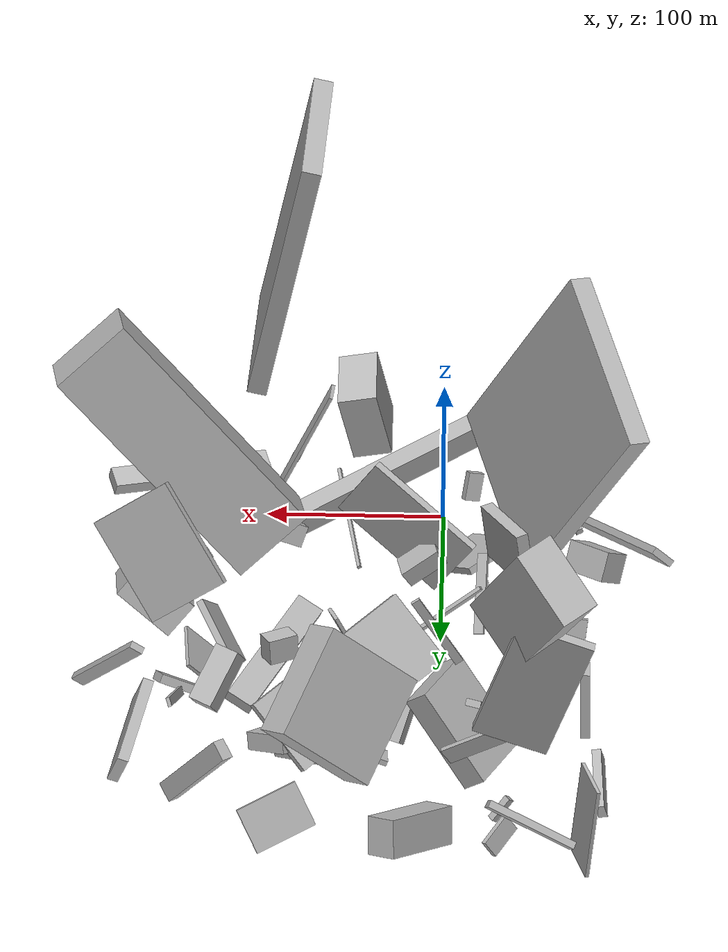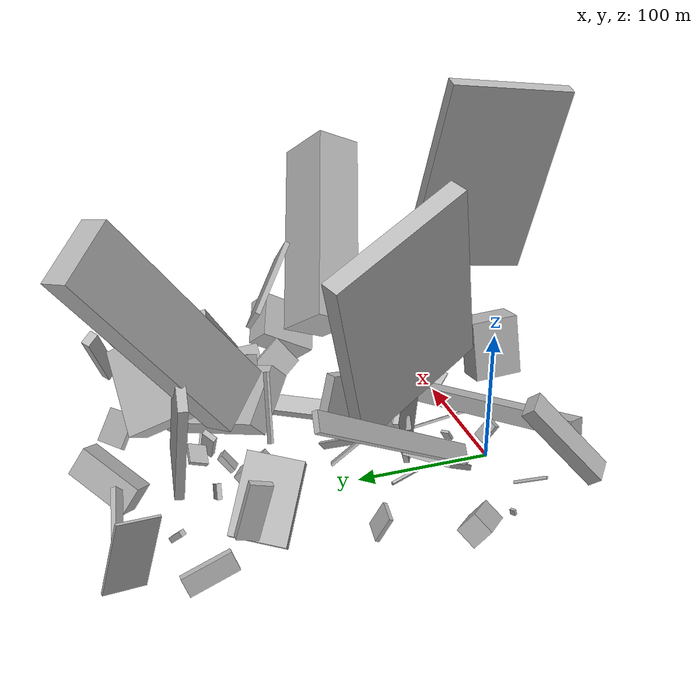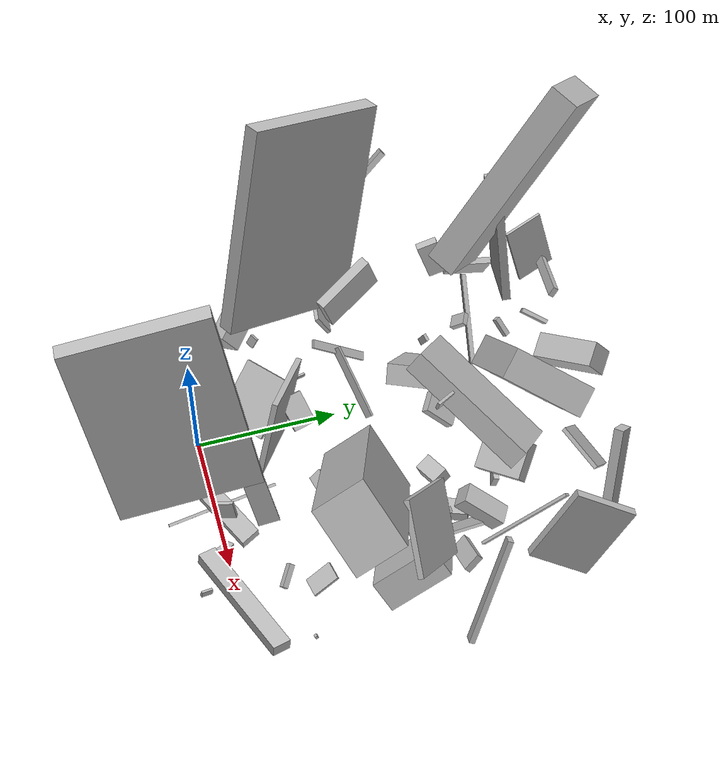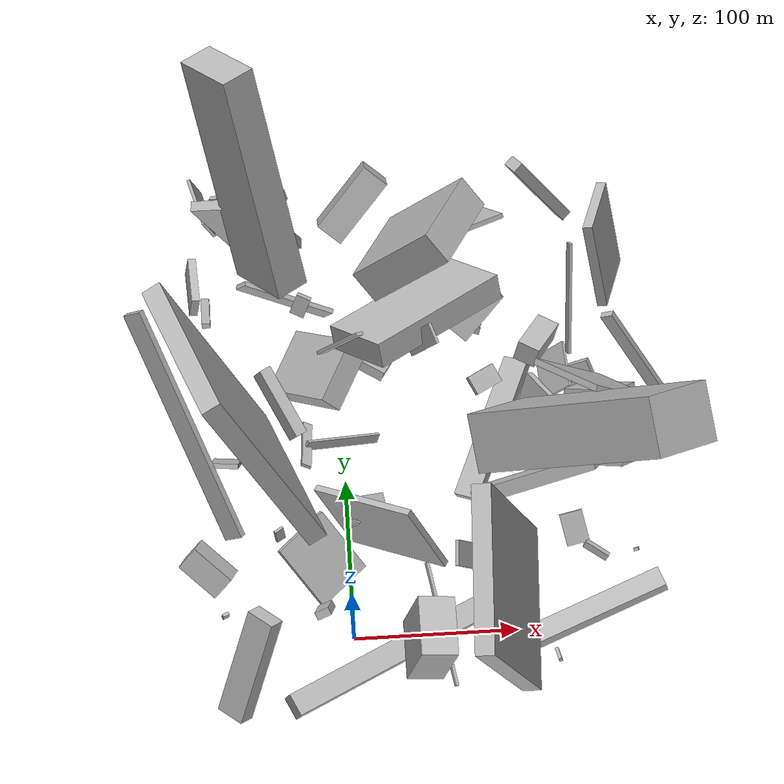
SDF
<sdf version="1.6">
 <world name="default">
  <model name="building_5">
   <static>0</static>
   <pose>44.778056149244705 -2.744506497203627 66.14277066838804 1.3153854542540708 -1.363695703409228 0.254666859420948</pose>
   <link name="link">
    <gravity>0</gravity>
    <pose>0 0 18.0 0 0 0</pose>
    <collision name="collision"><geometry><box><size>45 22 36</size></box></geometry></collision>
    <visual name="visual">
     <cast_shadows>0</cast_shadows>
     <geometry><box><size>45 22 36</size></box></geometry>
     <material>
      <script>
       <uri>model://HANNAS_wall/materials/scripts</uri>
       <uri>model://HANNAS_wall/materials/textures</uri>
       <name>vrc/HANNAS_wall</name>
      </script>
     </material>
    </visual>
   </link>
  </model>
  <model name="building_10">
   <static>0</static>
   <pose>159.26238290925542 92.02896353972424 36.88318740638226 -0.866168906942549 0.688343639659553 0.5821362179712117</pose>
   <link name="link">
    <gravity>0</gravity>
    <pose>0 0 23.5 0 0 0</pose>
    <collision name="collision"><geometry><box><size>22 37 47</size></box></geometry></collision>
    <visual name="visual">
     <cast_shadows>0</cast_shadows>
     <geometry><box><size>22 37 47</size></box></geometry>
     <material>
      <script>
       <uri>model://HANNAS_wall/materials/scripts</uri>
       <uri>model://HANNAS_wall/materials/textures</uri>
       <name>vrc/HANNAS_wall</name>
      </script>
     </material>
    </visual>
   </link>
  </model>
  <model name="building_17">
   <static>0</static>
   <pose>147.07335124607422 31.586698252664128 56.90004389693871 0.39409373939661796 -0.781526906151696 0.7269519840878601</pose>
   <link name="link">
    <gravity>0</gravity>
    <pose>0 0 2.0 0 0 0</pose>
    <collision name="collision"><geometry><box><size>4 16 4</size></box></geometry></collision>
    <visual name="visual">
     <cast_shadows>0</cast_shadows>
     <geometry><box><size>4 16 4</size></box></geometry>
     <material>
      <script>
       <uri>model://HANNAS_wall/materials/scripts</uri>
       <uri>model://HANNAS_wall/materials/textures</uri>
       <name>vrc/HANNAS_wall</name>
      </script>
     </material>
    </visual>
   </link>
  </model>
  <model name="building_19">
   <static>0</static>
   <pose>-36.991929567998454 195.44361527709134 106.40523324313753 0.6014749438251477 -0.23630089838122537 -2.5452063587975697</pose>
   <link name="link">
    <gravity>0</gravity>
    <pose>0 0 75.0 0 0 0</pose>
    <collision name="collision"><geometry><box><size>21 43 150</size></box></geometry></collision>
    <visual name="visual">
     <cast_shadows>0</cast_shadows>
     <geometry><box><size>21 43 150</size></box></geometry>
     <material>
      <script>
       <uri>model://HANNAS_wall/materials/scripts</uri>
       <uri>model://HANNAS_wall/materials/textures</uri>
       <name>vrc/HANNAS_wall</name>
      </script>
     </material>
    </visual>
   </link>
  </model>
  <model name="building_20">
   <static>0</static>
   <pose>94.09822200327073 98.38151085722018 77.85997008511394 0.6651164806860675 -0.4116509122025526 1.7270880041664904</pose>
   <link name="link">
    <gravity>0</gravity>
    <pose>0 0 75.0 0 0 0</pose>
    <collision name="collision"><geometry><box><size>36 48 150</size></box></geometry></collision>
    <visual name="visual">
     <cast_shadows>0</cast_shadows>
     <geometry><box><size>36 48 150</size></box></geometry>
     <material>
      <script>
       <uri>model://HANNAS_wall/materials/scripts</uri>
       <uri>model://HANNAS_wall/materials/textures</uri>
       <name>vrc/HANNAS_wall</name>
      </script>
     </material>
    </visual>
   </link>
  </model>
  <model name="building_24">
   <static>0</static>
   <pose>-15.30325132641914 13.638468927713093 27.282446304270735 -0.3785649534801156 -0.45344692399374487 2.0214560540023783</pose>
   <link name="link">
    <gravity>0</gravity>
    <pose>0 0 8.0 0 0 0</pose>
    <collision name="collision"><geometry><box><size>5 9 16</size></box></geometry></collision>
    <visual name="visual">
     <cast_shadows>0</cast_shadows>
     <geometry><box><size>5 9 16</size></box></geometry>
     <material>
      <script>
       <uri>model://HANNAS_wall/materials/scripts</uri>
       <uri>model://HANNAS_wall/materials/textures</uri>
       <name>vrc/HANNAS_wall</name>
      </script>
     </material>
    </visual>
   </link>
  </model>
  <model name="building_29">
   <static>0</static>
   <pose>39.81136026822822 195.73140224076906 21.76191490640496 0.772020333046498 -0.8735557124724231 3.059999052609426</pose>
   <link name="link">
    <gravity>0</gravity>
    <pose>0 0 5.0 0 0 0</pose>
    <collision name="collision"><geometry><box><size>38 4 10</size></box></geometry></collision>
    <visual name="visual">
     <cast_shadows>0</cast_shadows>
     <geometry><box><size>38 4 10</size></box></geometry>
     <material>
      <script>
       <uri>model://HANNAS_wall/materials/scripts</uri>
       <uri>model://HANNAS_wall/materials/textures</uri>
       <name>vrc/HANNAS_wall</name>
      </script>
     </material>
    </visual>
   </link>
  </model>
  <model name="building_34">
   <static>0</static>
   <pose>-30.20484504628663 34.5323856704043 17.383747631731975 1.6149548478544853 -0.5825663751012802 2.284457913500342</pose>
   <link name="link">
    <gravity>0</gravity>
    <pose>0 0 18.0 0 0 0</pose>
    <collision name="collision"><geometry><box><size>45 4 36</size></box></geometry></collision>
    <visual name="visual">
     <cast_shadows>0</cast_shadows>
     <geometry><box><size>45 4 36</size></box></geometry>
     <material>
      <script>
       <uri>model://HANNAS_wall/materials/scripts</uri>
       <uri>model://HANNAS_wall/materials/textures</uri>
       <name>vrc/HANNAS_wall</name>
      </script>
     </material>
    </visual>
   </link>
  </model>
  <model name="building_38">
   <static>0</static>
   <pose>65.04835317907795 250.75795322189708 61.40890547400553 0.9521231421667657 0.5278951409897339 -0.824453036692885</pose>
   <link name="link">
    <gravity>0</gravity>
    <pose>0 0 31.5 0 0 0</pose>
    <collision name="collision"><geometry><box><size>22 63 63</size></box></geometry></collision>
    <visual name="visual">
     <cast_shadows>0</cast_shadows>
     <geometry><box><size>22 63 63</size></box></geometry>
     <material>
      <script>
       <uri>model://HANNAS_wall/materials/scripts</uri>
       <uri>model://HANNAS_wall/materials/textures</uri>
       <name>vrc/HANNAS_wall</name>
      </script>
     </material>
    </visual>
   </link>
  </model>
  <model name="building_41">
   <static>0</static>
   <pose>-33.74149543195303 234.93582793715007 9.813323096186096 1.5978974556556989 0.7907058344630101 -2.526757367083551</pose>
   <link name="link">
    <gravity>0</gravity>
    <pose>0 0 2.0 0 0 0</pose>
    <collision name="collision"><geometry><box><size>4 15 4</size></box></geometry></collision>
    <visual name="visual">
     <cast_shadows>0</cast_shadows>
     <geometry><box><size>4 15 4</size></box></geometry>
     <material>
      <script>
       <uri>model://HANNAS_wall/materials/scripts</uri>
       <uri>model://HANNAS_wall/materials/textures</uri>
       <name>vrc/HANNAS_wall</name>
      </script>
     </material>
    </visual>
   </link>
  </model>
  <model name="building_42">
   <static>0</static>
   <pose>47.56785787581535 193.55038631564204 61.08692737566241 2.7045848603733917 -0.6232896597212882 -0.6908006851312648</pose>
   <link name="link">
    <gravity>0</gravity>
    <pose>0 0 8.0 0 0 0</pose>
    <collision name="collision"><geometry><box><size>45 98 16</size></box></geometry></collision>
    <visual name="visual">
     <cast_shadows>0</cast_shadows>
     <geometry><box><size>45 98 16</size></box></geometry>
     <material>
      <script>
       <uri>model://HANNAS_wall/materials/scripts</uri>
       <uri>model://HANNAS_wall/materials/textures</uri>
       <name>vrc/HANNAS_wall</name>
      </script>
     </material>
    </visual>
   </link>
  </model>
  <model name="building_46">
   <static>0</static>
   <pose>-34.01270636420579 74.30110749328891 89.77980059421813 0.3928609142874488 0.23525536511066883 -2.690229514602487</pose>
   <link name="link">
    <gravity>0</gravity>
    <pose>0 0 75.0 0 0 0</pose>
    <collision name="collision"><geometry><box><size>12 101 150</size></box></geometry></collision>
    <visual name="visual">
     <cast_shadows>0</cast_shadows>
     <geometry><box><size>12 101 150</size></box></geometry>
     <material>
      <script>
       <uri>model://HANNAS_wall/materials/scripts</uri>
       <uri>model://HANNAS_wall/materials/textures</uri>
       <name>vrc/HANNAS_wall</name>
      </script>
     </material>
    </visual>
   </link>
  </model>
  <model name="building_50">
   <static>0</static>
   <pose>21.586786002957346 -9.913893449675665 24.553142592630902 -2.2737813572307797 1.3163746159163776 2.9154272464365754</pose>
   <link name="link">
    <gravity>0</gravity>
    <pose>0 0 7.0 0 0 0</pose>
    <collision name="collision"><geometry><box><size>13 146 14</size></box></geometry></collision>
    <visual name="visual">
     <cast_shadows>0</cast_shadows>
     <geometry><box><size>13 146 14</size></box></geometry>
     <material>
      <script>
       <uri>model://HANNAS_wall/materials/scripts</uri>
       <uri>model://HANNAS_wall/materials/textures</uri>
       <name>vrc/HANNAS_wall</name>
      </script>
     </material>
    </visual>
   </link>
  </model>
  <model name="building_53">
   <static>0</static>
   <pose>100.60390814860959 -15.092230734774791 25.896820279495763 -1.4259927205225118 -0.19645979109741132 -1.2516202834565033</pose>
   <link name="link">
    <gravity>0</gravity>
    <pose>0 0 46.0 0 0 0</pose>
    <collision name="collision"><geometry><box><size>13 8 92</size></box></geometry></collision>
    <visual name="visual">
     <cast_shadows>0</cast_shadows>
     <geometry><box><size>13 8 92</size></box></geometry>
     <material>
      <script>
       <uri>model://HANNAS_wall/materials/scripts</uri>
       <uri>model://HANNAS_wall/materials/textures</uri>
       <name>vrc/HANNAS_wall</name>
      </script>
     </material>
    </visual>
   </link>
  </model>
  <model name="building_55">
   <static>0</static>
   <pose>20.288248704480694 267.6215410302659 26.28270576237411 -1.1436431044468642 -0.4209165771703944 0.7734837032444581</pose>
   <link name="link">
    <gravity>0</gravity>
    <pose>0 0 9.0 0 0 0</pose>
    <collision name="collision"><geometry><box><size>47 21 18</size></box></geometry></collision>
    <visual name="visual">
     <cast_shadows>0</cast_shadows>
     <geometry><box><size>47 21 18</size></box></geometry>
     <material>
      <script>
       <uri>model://HANNAS_wall/materials/scripts</uri>
       <uri>model://HANNAS_wall/materials/textures</uri>
       <name>vrc/HANNAS_wall</name>
      </script>
     </material>
    </visual>
   </link>
  </model>
  <model name="building_57">
   <static>0</static>
   <pose>3.0971568858658696 158.83400276451692 29.963167547131142 -2.9717191477229377 0.7430932668340345 -0.3727582983278649</pose>
   <link name="link">
    <gravity>0</gravity>
    <pose>0 0 29.5 0 0 0</pose>
    <collision name="collision"><geometry><box><size>15 41 59</size></box></geometry></collision>
    <visual name="visual">
     <cast_shadows>0</cast_shadows>
     <geometry><box><size>15 41 59</size></box></geometry>
     <material>
      <script>
       <uri>model://HANNAS_wall/materials/scripts</uri>
       <uri>model://HANNAS_wall/materials/textures</uri>
       <name>vrc/HANNAS_wall</name>
      </script>
     </material>
    </visual>
   </link>
  </model>
  <model name="building_70">
   <static>0</static>
   <pose>88.65905766396622 192.63918042807668 8.003514401234632 1.5367970615400475 -0.1730445294510119 -1.8297818944161446</pose>
   <link name="link">
    <gravity>0</gravity>
    <pose>0 0 22.0 0 0 0</pose>
    <collision name="collision"><geometry><box><size>4 10 44</size></box></geometry></collision>
    <visual name="visual">
     <cast_shadows>0</cast_shadows>
     <geometry><box><size>4 10 44</size></box></geometry>
     <material>
      <script>
       <uri>model://HANNAS_wall/materials/scripts</uri>
       <uri>model://HANNAS_wall/materials/textures</uri>
       <name>vrc/HANNAS_wall</name>
      </script>
     </material>
    </visual>
   </link>
  </model>
  <model name="building_75">
   <static>0</static>
   <pose>109.69385635925492 166.89216809473487 16.685920964842254 1.6617572279418997 -0.3577526816601804 -0.4363376201095537</pose>
   <link name="link">
    <gravity>0</gravity>
    <pose>0 0 46.0 0 0 0</pose>
    <collision name="collision"><geometry><box><size>16 6 92</size></box></geometry></collision>
    <visual name="visual">
     <cast_shadows>0</cast_shadows>
     <geometry><box><size>16 6 92</size></box></geometry>
     <material>
      <script>
       <uri>model://HANNAS_wall/materials/scripts</uri>
       <uri>model://HANNAS_wall/materials/textures</uri>
       <name>vrc/HANNAS_wall</name>
      </script>
     </material>
    </visual>
   </link>
  </model>
  <model name="building_77">
   <static>0</static>
   <pose>181.8570690344355 160.13765905627568 35.90201999981313 1.1737415076461686 -0.5812599467703655 -0.11875032636745551</pose>
   <link name="link">
    <gravity>0</gravity>
    <pose>0 0 2.0 0 0 0</pose>
    <collision name="collision"><geometry><box><size>8 78 4</size></box></geometry></collision>
    <visual name="visual">
     <cast_shadows>0</cast_shadows>
     <geometry><box><size>8 78 4</size></box></geometry>
     <material>
      <script>
       <uri>model://HANNAS_wall/materials/scripts</uri>
       <uri>model://HANNAS_wall/materials/textures</uri>
       <name>vrc/HANNAS_wall</name>
      </script>
     </material>
    </visual>
   </link>
  </model>
  <model name="building_78">
   <static>0</static>
   <pose>-69.05500821972882 -20.016692343197818 45.925746586712165 1.2667740156166245 0.7178146535718989 0.6640760450265506</pose>
   <link name="link">
    <gravity>0</gravity>
    <pose>0 0 9.0 0 0 0</pose>
    <collision name="collision"><geometry><box><size>11 71 18</size></box></geometry></collision>
    <visual name="visual">
     <cast_shadows>0</cast_shadows>
     <geometry><box><size>11 71 18</size></box></geometry>
     <material>
      <script>
       <uri>model://HANNAS_wall/materials/scripts</uri>
       <uri>model://HANNAS_wall/materials/textures</uri>
       <name>vrc/HANNAS_wall</name>
      </script>
     </material>
    </visual>
   </link>
  </model>
  <model name="building_84">
   <static>0</static>
   <pose>142.8050403978477 254.7878102235095 37.96091175630559 -0.2959593701829025 0.5469052099843638 2.1654133992850406</pose>
   <link name="link">
    <gravity>0</gravity>
    <pose>0 0 29.0 0 0 0</pose>
    <collision name="collision"><geometry><box><size>11 7 58</size></box></geometry></collision>
    <visual name="visual">
     <cast_shadows>0</cast_shadows>
     <geometry><box><size>11 7 58</size></box></geometry>
     <material>
      <script>
       <uri>model://HANNAS_wall/materials/scripts</uri>
       <uri>model://HANNAS_wall/materials/textures</uri>
       <name>vrc/HANNAS_wall</name>
      </script>
     </material>
    </visual>
   </link>
  </model>
  <model name="building_85">
   <static>0</static>
   <pose>-67.43605131735086 51.27881789525554 55.22328149071778 -0.8900346789164839 0.5775695782136471 0.8311956906063748</pose>
   <link name="link">
    <gravity>0</gravity>
    <pose>0 0 75.0 0 0 0</pose>
    <collision name="collision"><geometry><box><size>4 13 150</size></box></geometry></collision>
    <visual name="visual">
     <cast_shadows>0</cast_shadows>
     <geometry><box><size>4 13 150</size></box></geometry>
     <material>
      <script>
       <uri>model://HANNAS_wall/materials/scripts</uri>
       <uri>model://HANNAS_wall/materials/textures</uri>
       <name>vrc/HANNAS_wall</name>
      </script>
     </material>
    </visual>
   </link>
  </model>
  <model name="building_86">
   <static>0</static>
   <pose>-79.89344231442692 200.83990857174874 33.729544997269294 0.2783712758644961 0.028830114520375132 -0.004179800393548991</pose>
   <link name="link">
    <gravity>0</gravity>
    <pose>0 0 19.5 0 0 0</pose>
    <collision name="collision"><geometry><box><size>5 15 39</size></box></geometry></collision>
    <visual name="visual">
     <cast_shadows>0</cast_shadows>
     <geometry><box><size>5 15 39</size></box></geometry>
     <material>
      <script>
       <uri>model://HANNAS_wall/materials/scripts</uri>
       <uri>model://HANNAS_wall/materials/textures</uri>
       <name>vrc/HANNAS_wall</name>
      </script>
     </material>
    </visual>
   </link>
  </model>
  <model name="building_87">
   <static>0</static>
   <pose>102.16376389358152 -19.573573346609606 112.08620609434865 0.20204767647860034 0.12589782431157232 -1.6097579346735635</pose>
   <link name="link">
    <gravity>0</gravity>
    <pose>0 0 75.0 0 0 0</pose>
    <collision name="collision"><geometry><box><size>94 11 150</size></box></geometry></collision>
    <visual name="visual">
     <cast_shadows>0</cast_shadows>
     <geometry><box><size>94 11 150</size></box></geometry>
     <material>
      <script>
       <uri>model://HANNAS_wall/materials/scripts</uri>
       <uri>model://HANNAS_wall/materials/textures</uri>
       <name>vrc/HANNAS_wall</name>
      </script>
     </material>
    </visual>
   </link>
  </model>
  <model name="building_93">
   <static>0</static>
   <pose>47.04210110501532 41.31547956295458 63.7975307350153 2.078477752223365 -0.09132652222053321 -2.1198149634703136</pose>
   <link name="link">
    <gravity>0</gravity>
    <pose>0 0 35.5 0 0 0</pose>
    <collision name="collision"><geometry><box><size>4 57 71</size></box></geometry></collision>
    <visual name="visual">
     <cast_shadows>0</cast_shadows>
     <geometry><box><size>4 57 71</size></box></geometry>
     <material>
      <script>
       <uri>model://HANNAS_wall/materials/scripts</uri>
       <uri>model://HANNAS_wall/materials/textures</uri>
       <name>vrc/HANNAS_wall</name>
      </script>
     </material>
    </visual>
   </link>
  </model>
  <model name="building_94">
   <static>0</static>
   <pose>172.85004721239002 123.91050046894952 73.08390082262079 0.8129132900208634 0.41974611180112015 -1.965882683772748</pose>
   <link name="link">
    <gravity>0</gravity>
    <pose>0 0 25.5 0 0 0</pose>
    <collision name="collision"><geometry><box><size>4 63 51</size></box></geometry></collision>
    <visual name="visual">
     <cast_shadows>0</cast_shadows>
     <geometry><box><size>4 63 51</size></box></geometry>
     <material>
      <script>
       <uri>model://HANNAS_wall/materials/scripts</uri>
       <uri>model://HANNAS_wall/materials/textures</uri>
       <name>vrc/HANNAS_wall</name>
      </script>
     </material>
    </visual>
   </link>
  </model>
  <model name="building_98">
   <static>0</static>
   <pose>68.57291536554484 189.85977787512414 21.272554055263484 -0.9201270914004317 -0.991508661698726 -1.3734487569067695</pose>
   <link name="link">
    <gravity>0</gravity>
    <pose>0 0 18.0 0 0 0</pose>
    <collision name="collision"><geometry><box><size>10 27 36</size></box></geometry></collision>
    <visual name="visual">
     <cast_shadows>0</cast_shadows>
     <geometry><box><size>10 27 36</size></box></geometry>
     <material>
      <script>
       <uri>model://HANNAS_wall/materials/scripts</uri>
       <uri>model://HANNAS_wall/materials/textures</uri>
       <name>vrc/HANNAS_wall</name>
      </script>
     </material>
    </visual>
   </link>
  </model>
  <model name="building_105">
   <static>0</static>
   <pose>121.29701242689217 -16.899383174720217 13.27989947409276 0.6845574657409004 1.2496736858447386 -0.6403095690245395</pose>
   <link name="link">
    <gravity>0</gravity>
    <pose>0 0 4.0 0 0 0</pose>
    <collision name="collision"><geometry><box><size>4 2 8</size></box></geometry></collision>
    <visual name="visual">
     <cast_shadows>0</cast_shadows>
     <geometry><box><size>4 2 8</size></box></geometry>
     <material>
      <script>
       <uri>model://HANNAS_wall/materials/scripts</uri>
       <uri>model://HANNAS_wall/materials/textures</uri>
       <name>vrc/HANNAS_wall</name>
      </script>
     </material>
    </visual>
   </link>
  </model>
  <model name="building_106">
   <static>0</static>
   <pose>-22.653697577567367 108.85219418257869 46.468556305545725 -0.42116489595931716 -0.6556310355510672 -1.6150396552650936</pose>
   <link name="link">
    <gravity>0</gravity>
    <pose>0 0 1.0 0 0 0</pose>
    <collision name="collision"><geometry><box><size>45 6 2</size></box></geometry></collision>
    <visual name="visual">
     <cast_shadows>0</cast_shadows>
     <geometry><box><size>45 6 2</size></box></geometry>
     <material>
      <script>
       <uri>model://HANNAS_wall/materials/scripts</uri>
       <uri>model://HANNAS_wall/materials/textures</uri>
       <name>vrc/HANNAS_wall</name>
      </script>
     </material>
    </visual>
   </link>
  </model>
  <model name="building_110">
   <static>0</static>
   <pose>-80.55149635185131 111.03139016333178 17.670570271075857 1.4947455478342635 -0.4791080192908063 1.4872667559937331</pose>
   <link name="link">
    <gravity>0</gravity>
    <pose>0 0 8.5 0 0 0</pose>
    <collision name="collision"><geometry><box><size>3 19 17</size></box></geometry></collision>
    <visual name="visual">
     <cast_shadows>0</cast_shadows>
     <geometry><box><size>3 19 17</size></box></geometry>
     <material>
      <script>
       <uri>model://HANNAS_wall/materials/scripts</uri>
       <uri>model://HANNAS_wall/materials/textures</uri>
       <name>vrc/HANNAS_wall</name>
      </script>
     </material>
    </visual>
   </link>
  </model>
  <model name="building_117">
   <static>0</static>
   <pose>93.22158286936086 -2.7025622555865985 12.57654559285771 -0.21647198349027924 0.33574865677376137 2.296110096925647</pose>
   <link name="link">
    <gravity>0</gravity>
    <pose>0 0 1.0 0 0 0</pose>
    <collision name="collision"><geometry><box><size>16 7 2</size></box></geometry></collision>
    <visual name="visual">
     <cast_shadows>0</cast_shadows>
     <geometry><box><size>16 7 2</size></box></geometry>
     <material>
      <script>
       <uri>model://HANNAS_wall/materials/scripts</uri>
       <uri>model://HANNAS_wall/materials/textures</uri>
       <name>vrc/HANNAS_wall</name>
      </script>
     </material>
    </visual>
   </link>
  </model>
  <model name="building_123">
   <static>0</static>
   <pose>9.55028257614181 78.49554610552082 35.18464714955 -1.8841405367309316 0.9879080445254985 3.073421940668859</pose>
   <link name="link">
    <gravity>0</gravity>
    <pose>0 0 8.0 0 0 0</pose>
    <collision name="collision"><geometry><box><size>10 24 16</size></box></geometry></collision>
    <visual name="visual">
     <cast_shadows>0</cast_shadows>
     <geometry><box><size>10 24 16</size></box></geometry>
     <material>
      <script>
       <uri>model://HANNAS_wall/materials/scripts</uri>
       <uri>model://HANNAS_wall/materials/textures</uri>
       <name>vrc/HANNAS_wall</name>
      </script>
     </material>
    </visual>
   </link>
  </model>
  <model name="building_129">
   <static>0</static>
   <pose>114.98173976175015 76.88918434285632 64.86548947756653 0.549041569554874 -0.47288677825816045 0.09905354553479863</pose>
   <link name="link">
    <gravity>0</gravity>
    <pose>0 0 6.0 0 0 0</pose>
    <collision name="collision"><geometry><box><size>80 9 12</size></box></geometry></collision>
    <visual name="visual">
     <cast_shadows>0</cast_shadows>
     <geometry><box><size>80 9 12</size></box></geometry>
     <material>
      <script>
       <uri>model://HANNAS_wall/materials/scripts</uri>
       <uri>model://HANNAS_wall/materials/textures</uri>
       <name>vrc/HANNAS_wall</name>
      </script>
     </material>
    </visual>
   </link>
  </model>
  <model name="building_130">
   <static>0</static>
   <pose>-75.53043152176097 256.83071332406735 35.1263498574639 0.6570457908297681 -1.3258581061257526 -1.95541505049849</pose>
   <link name="link">
    <gravity>0</gravity>
    <pose>0 0 14.5 0 0 0</pose>
    <collision name="collision"><geometry><box><size>54 2 29</size></box></geometry></collision>
    <visual name="visual">
     <cast_shadows>0</cast_shadows>
     <geometry><box><size>54 2 29</size></box></geometry>
     <material>
      <script>
       <uri>model://HANNAS_wall/materials/scripts</uri>
       <uri>model://HANNAS_wall/materials/textures</uri>
       <name>vrc/HANNAS_wall</name>
      </script>
     </material>
    </visual>
   </link>
  </model>
  <model name="building_132">
   <static>0</static>
   <pose>-28.72107491710064 268.9070764479894 11.84519118849273 1.2380202692970201 0.47434956323731287 -0.7838491232640163</pose>
   <link name="link">
    <gravity>0</gravity>
    <pose>0 0 10.0 0 0 0</pose>
    <collision name="collision"><geometry><box><size>3 11 20</size></box></geometry></collision>
    <visual name="visual">
     <cast_shadows>0</cast_shadows>
     <geometry><box><size>3 11 20</size></box></geometry>
     <material>
      <script>
       <uri>model://HANNAS_wall/materials/scripts</uri>
       <uri>model://HANNAS_wall/materials/textures</uri>
       <name>vrc/HANNAS_wall</name>
      </script>
     </material>
    </visual>
   </link>
  </model>
  <model name="building_134">
   <static>0</static>
   <pose>-26.476506421375777 73.62945835308172 16.684034185774966 2.8474300179178162 0.12759846053448837 1.8614723078034994</pose>
   <link name="link">
    <gravity>0</gravity>
    <pose>0 0 1.0 0 0 0</pose>
    <collision name="collision"><geometry><box><size>26 2 2</size></box></geometry></collision>
    <visual name="visual">
     <cast_shadows>0</cast_shadows>
     <geometry><box><size>26 2 2</size></box></geometry>
     <material>
      <script>
       <uri>model://HANNAS_wall/materials/scripts</uri>
       <uri>model://HANNAS_wall/materials/textures</uri>
       <name>vrc/HANNAS_wall</name>
      </script>
     </material>
    </visual>
   </link>
  </model>
  <model name="building_140">
   <static>0</static>
   <pose>52.8788719189879 5.380782456340189 2.6659639481458184 0.4878061159554254 0.017148078429171373 1.7393286689024055</pose>
   <link name="link">
    <gravity>0</gravity>
    <pose>0 0 1.0 0 0 0</pose>
    <collision name="collision"><geometry><box><size>80 2 2</size></box></geometry></collision>
    <visual name="visual">
     <cast_shadows>0</cast_shadows>
     <geometry><box><size>80 2 2</size></box></geometry>
     <material>
      <script>
       <uri>model://HANNAS_wall/materials/scripts</uri>
       <uri>model://HANNAS_wall/materials/textures</uri>
       <name>vrc/HANNAS_wall</name>
      </script>
     </material>
    </visual>
   </link>
  </model>
  <model name="building_145">
   <static>0</static>
   <pose>-50.17285317549198 2.882311539325797 10.583080294817655 -0.9335383290484349 -0.5836562993509291 1.843725243613744</pose>
   <link name="link">
    <gravity>0</gravity>
    <pose>0 0 13.5 0 0 0</pose>
    <collision name="collision"><geometry><box><size>2 2 27</size></box></geometry></collision>
    <visual name="visual">
     <cast_shadows>0</cast_shadows>
     <geometry><box><size>2 2 27</size></box></geometry>
     <material>
      <script>
       <uri>model://HANNAS_wall/materials/scripts</uri>
       <uri>model://HANNAS_wall/materials/textures</uri>
       <name>vrc/HANNAS_wall</name>
      </script>
     </material>
    </visual>
   </link>
  </model>
  <model name="building_157">
   <static>0</static>
   <pose>95.70717656823399 30.105300203369843 41.04381327323399 0.42274355815063236 0.21169071356552088 -1.6399710017477136</pose>
   <link name="link">
    <gravity>0</gravity>
    <pose>0 0 39.5 0 0 0</pose>
    <collision name="collision"><geometry><box><size>15 2 79</size></box></geometry></collision>
    <visual name="visual">
     <cast_shadows>0</cast_shadows>
     <geometry><box><size>15 2 79</size></box></geometry>
     <material>
      <script>
       <uri>model://HANNAS_wall/materials/scripts</uri>
       <uri>model://HANNAS_wall/materials/textures</uri>
       <name>vrc/HANNAS_wall</name>
      </script>
     </material>
    </visual>
   </link>
  </model>
  <model name="building_161">
   <static>0</static>
   <pose>87.13650887586039 149.12984221502086 34.694437489073465 -0.08934634535841186 -0.2962137595046673 2.066364255272128</pose>
   <link name="link">
    <gravity>0</gravity>
    <pose>0 0 7.0 0 0 0</pose>
    <collision name="collision"><geometry><box><size>12 17 14</size></box></geometry></collision>
    <visual name="visual">
     <cast_shadows>0</cast_shadows>
     <geometry><box><size>12 17 14</size></box></geometry>
     <material>
      <script>
       <uri>model://HANNAS_wall/materials/scripts</uri>
       <uri>model://HANNAS_wall/materials/textures</uri>
       <name>vrc/HANNAS_wall</name>
      </script>
     </material>
    </visual>
   </link>
  </model>
  <model name="building_162">
   <static>0</static>
   <pose>-41.504166405945625 54.00974428574594 57.42249512885474 2.6451146478871195 0.20059021736939897 0.5971687810962613</pose>
   <link name="link">
    <gravity>0</gravity>
    <pose>0 0 4.0 0 0 0</pose>
    <collision name="collision"><geometry><box><size>6 2 8</size></box></geometry></collision>
    <visual name="visual">
     <cast_shadows>0</cast_shadows>
     <geometry><box><size>6 2 8</size></box></geometry>
     <material>
      <script>
       <uri>model://HANNAS_wall/materials/scripts</uri>
       <uri>model://HANNAS_wall/materials/textures</uri>
       <name>vrc/HANNAS_wall</name>
      </script>
     </material>
    </visual>
   </link>
  </model>
  <model name="building_172">
   <static>0</static>
   <pose>158.535406068865 206.82343414473826 65.30938594620956 2.643470250837866 -0.9753839409646594 1.8397059630993078</pose>
   <link name="link">
    <gravity>0</gravity>
    <pose>0 0 23.0 0 0 0</pose>
    <collision name="collision"><geometry><box><size>60 6 46</size></box></geometry></collision>
    <visual name="visual">
     <cast_shadows>0</cast_shadows>
     <geometry><box><size>60 6 46</size></box></geometry>
     <material>
      <script>
       <uri>model://HANNAS_wall/materials/scripts</uri>
       <uri>model://HANNAS_wall/materials/textures</uri>
       <name>vrc/HANNAS_wall</name>
      </script>
     </material>
    </visual>
   </link>
  </model>
  <model name="building_178">
   <static>0</static>
   <pose>-38.68895730368185 234.1852517309008 61.50014330940941 0.06878475774748455 -0.29687621535792713 -0.12690461648833776</pose>
   <link name="link">
    <gravity>0</gravity>
    <pose>0 0 40.0 0 0 0</pose>
    <collision name="collision"><geometry><box><size>42 6 80</size></box></geometry></collision>
    <visual name="visual">
     <cast_shadows>0</cast_shadows>
     <geometry><box><size>42 6 80</size></box></geometry>
     <material>
      <script>
       <uri>model://HANNAS_wall/materials/scripts</uri>
       <uri>model://HANNAS_wall/materials/textures</uri>
       <name>vrc/HANNAS_wall</name>
      </script>
     </material>
    </visual>
   </link>
  </model>
  <model name="building_179">
   <static>0</static>
   <pose>84.56482207229413 3.3951216693987396 49.56375856413153 2.4517165452093517 -1.1592093908524663 -2.8746149236850917</pose>
   <link name="link">
    <gravity>0</gravity>
    <pose>0 0 1.5 0 0 0</pose>
    <collision name="collision"><geometry><box><size>12 12 3</size></box></geometry></collision>
    <visual name="visual">
     <cast_shadows>0</cast_shadows>
     <geometry><box><size>12 12 3</size></box></geometry>
     <material>
      <script>
       <uri>model://HANNAS_wall/materials/scripts</uri>
       <uri>model://HANNAS_wall/materials/textures</uri>
       <name>vrc/HANNAS_wall</name>
      </script>
     </material>
    </visual>
   </link>
  </model>
  <model name="building_180">
   <static>0</static>
   <pose>-31.11507030786368 206.6648470480465 35.96590356769903 1.567434064729437 -0.6203732949124763 3.00539612904145</pose>
   <link name="link">
    <gravity>0</gravity>
    <pose>0 0 1.5 0 0 0</pose>
    <collision name="collision"><geometry><box><size>65 10 3</size></box></geometry></collision>
    <visual name="visual">
     <cast_shadows>0</cast_shadows>
     <geometry><box><size>65 10 3</size></box></geometry>
     <material>
      <script>
       <uri>model://HANNAS_wall/materials/scripts</uri>
       <uri>model://HANNAS_wall/materials/textures</uri>
       <name>vrc/HANNAS_wall</name>
      </script>
     </material>
    </visual>
   </link>
  </model>
  <model name="building_184">
   <static>0</static>
   <pose>34.32623196068114 208.27927362333986 23.130690902499794 -2.759650952155164 -0.36640445320628473 -0.09097330594178665</pose>
   <link name="link">
    <gravity>0</gravity>
    <pose>0 0 1.5 0 0 0</pose>
    <collision name="collision"><geometry><box><size>16 14 3</size></box></geometry></collision>
    <visual name="visual">
     <cast_shadows>0</cast_shadows>
     <geometry><box><size>16 14 3</size></box></geometry>
     <material>
      <script>
       <uri>model://HANNAS_wall/materials/scripts</uri>
       <uri>model://HANNAS_wall/materials/textures</uri>
       <name>vrc/HANNAS_wall</name>
      </script>
     </material>
    </visual>
   </link>
  </model>
  <model name="building_186">
   <static>0</static>
   <pose>43.000002689465006 167.38905251266152 52.64290196352524 0.2982649763471771 0.3600351749138255 0.4670646995175642</pose>
   <link name="link">
    <gravity>0</gravity>
    <pose>0 0 17.0 0 0 0</pose>
    <collision name="collision"><geometry><box><size>2 13 34</size></box></geometry></collision>
    <visual name="visual">
     <cast_shadows>0</cast_shadows>
     <geometry><box><size>2 13 34</size></box></geometry>
     <material>
      <script>
       <uri>model://HANNAS_wall/materials/scripts</uri>
       <uri>model://HANNAS_wall/materials/textures</uri>
       <name>vrc/HANNAS_wall</name>
      </script>
     </material>
    </visual>
   </link>
  </model>
  <model name="building_190">
   <static>0</static>
   <pose>-20.987490615361175 199.73271115658167 49.35428676650062 -0.8075759211998721 -0.1417067068818674 2.700368058285999</pose>
   <link name="link">
    <gravity>0</gravity>
    <pose>0 0 2.0 0 0 0</pose>
    <collision name="collision"><geometry><box><size>9 13 4</size></box></geometry></collision>
    <visual name="visual">
     <cast_shadows>0</cast_shadows>
     <geometry><box><size>9 13 4</size></box></geometry>
     <material>
      <script>
       <uri>model://HANNAS_wall/materials/scripts</uri>
       <uri>model://HANNAS_wall/materials/textures</uri>
       <name>vrc/HANNAS_wall</name>
      </script>
     </material>
    </visual>
   </link>
  </model>
  <model name="building_194">
   <static>0</static>
   <pose>131.41892976298553 137.45345639340917 36.58196752900452 -1.6216625547403696 -0.8857982123944271 0.12257600384579208</pose>
   <link name="link">
    <gravity>0</gravity>
    <pose>0 0 14.5 0 0 0</pose>
    <collision name="collision"><geometry><box><size>25 2 29</size></box></geometry></collision>
    <visual name="visual">
     <cast_shadows>0</cast_shadows>
     <geometry><box><size>25 2 29</size></box></geometry>
     <material>
      <script>
       <uri>model://HANNAS_wall/materials/scripts</uri>
       <uri>model://HANNAS_wall/materials/textures</uri>
       <name>vrc/HANNAS_wall</name>
      </script>
     </material>
    </visual>
   </link>
  </model>
  <model name="building_197">
   <static>0</static>
   <pose>20.901583405761162 120.6904825576901 20.330211093065643 -0.9204912513495731 0.4211703393710506 2.1540156076544235</pose>
   <link name="link">
    <gravity>0</gravity>
    <pose>0 0 27.0 0 0 0</pose>
    <collision name="collision"><geometry><box><size>2 6 54</size></box></geometry></collision>
    <visual name="visual">
     <cast_shadows>0</cast_shadows>
     <geometry><box><size>2 6 54</size></box></geometry>
     <material>
      <script>
       <uri>model://HANNAS_wall/materials/scripts</uri>
       <uri>model://HANNAS_wall/materials/textures</uri>
       <name>vrc/HANNAS_wall</name>
      </script>
     </material>
    </visual>
   </link>
  </model>
  <model name="building_208">
   <static>0</static>
   <pose>114.88993624537794 174.3746611738353 39.47765961482648 1.5467607807034118 0.5832151640413618 1.0261288831324493</pose>
   <link name="link">
    <gravity>0</gravity>
    <pose>0 0 7.0 0 0 0</pose>
    <collision name="collision"><geometry><box><size>33 13 14</size></box></geometry></collision>
    <visual name="visual">
     <cast_shadows>0</cast_shadows>
     <geometry><box><size>33 13 14</size></box></geometry>
     <material>
      <script>
       <uri>model://HANNAS_wall/materials/scripts</uri>
       <uri>model://HANNAS_wall/materials/textures</uri>
       <name>vrc/HANNAS_wall</name>
      </script>
     </material>
    </visual>
   </link>
  </model>
  <model name="building_209">
   <static>0</static>
   <pose>143.33465539838016 194.30956151043296 48.00289565464741 1.1910498242377567 -0.8008934198282355 -1.1198961747352338</pose>
   <link name="link">
    <gravity>0</gravity>
    <pose>0 0 1.0 0 0 0</pose>
    <collision name="collision"><geometry><box><size>5 71 2</size></box></geometry></collision>
    <visual name="visual">
     <cast_shadows>0</cast_shadows>
     <geometry><box><size>5 71 2</size></box></geometry>
     <material>
      <script>
       <uri>model://HANNAS_wall/materials/scripts</uri>
       <uri>model://HANNAS_wall/materials/textures</uri>
       <name>vrc/HANNAS_wall</name>
      </script>
     </material>
    </visual>
   </link>
  </model>
  <model name="building_212">
   <static>0</static>
   <pose>130.42851079237667 154.42874589175122 12.173732141994442 0.8456701368115985 0.7705464874390707 1.088432296163687</pose>
   <link name="link">
    <gravity>0</gravity>
    <pose>0 0 13.5 0 0 0</pose>
    <collision name="collision"><geometry><box><size>5 13 27</size></box></geometry></collision>
    <visual name="visual">
     <cast_shadows>0</cast_shadows>
     <geometry><box><size>5 13 27</size></box></geometry>
     <material>
      <script>
       <uri>model://HANNAS_wall/materials/scripts</uri>
       <uri>model://HANNAS_wall/materials/textures</uri>
       <name>vrc/HANNAS_wall</name>
      </script>
     </material>
    </visual>
   </link>
  </model>
  <model name="building_214">
   <static>0</static>
   <pose>-27.730584456793178 271.0977547164299 49.75005757491724 2.2976523508574407 0.8283214352251321 -1.1553948264817009</pose>
   <link name="link">
    <gravity>0</gravity>
    <pose>0 0 26.0 0 0 0</pose>
    <collision name="collision"><geometry><box><size>7 4 52</size></box></geometry></collision>
    <visual name="visual">
     <cast_shadows>0</cast_shadows>
     <geometry><box><size>7 4 52</size></box></geometry>
     <material>
      <script>
       <uri>model://HANNAS_wall/materials/scripts</uri>
       <uri>model://HANNAS_wall/materials/textures</uri>
       <name>vrc/HANNAS_wall</name>
      </script>
     </material>
    </visual>
   </link>
  </model>
  <model name="building_215">
   <static>0</static>
   <pose>173.471971525218 42.63486342827076 16.772995328720206 -2.2702925203081628 -0.9508400466626276 -2.314388685527124</pose>
   <link name="link">
    <gravity>0</gravity>
    <pose>0 0 1.0 0 0 0</pose>
    <collision name="collision"><geometry><box><size>2 3 2</size></box></geometry></collision>
    <visual name="visual">
     <cast_shadows>0</cast_shadows>
     <geometry><box><size>2 3 2</size></box></geometry>
     <material>
      <script>
       <uri>model://HANNAS_wall/materials/scripts</uri>
       <uri>model://HANNAS_wall/materials/textures</uri>
       <name>vrc/HANNAS_wall</name>
      </script>
     </material>
    </visual>
   </link>
  </model>
  <model name="building_216">
   <static>0</static>
   <pose>-75.09568970410717 17.698452274297903 7.470918369763194 1.3670649456216677 -0.1270084337086088 -1.1189980499127923</pose>
   <link name="link">
    <gravity>0</gravity>
    <pose>0 0 2.0 0 0 0</pose>
    <collision name="collision"><geometry><box><size>2 4 4</size></box></geometry></collision>
    <visual name="visual">
     <cast_shadows>0</cast_shadows>
     <geometry><box><size>2 4 4</size></box></geometry>
     <material>
      <script>
       <uri>model://HANNAS_wall/materials/scripts</uri>
       <uri>model://HANNAS_wall/materials/textures</uri>
       <name>vrc/HANNAS_wall</name>
      </script>
     </material>
    </visual>
   </link>
  </model>
  <model name="building_222">
   <static>0</static>
   <pose>24.347125682297232 173.80527639256428 14.423659220605977 -2.978373105160408 0.7402825874926708 1.153202087972992</pose>
   <link name="link">
    <gravity>0</gravity>
    <pose>0 0 3.0 0 0 0</pose>
    <collision name="collision"><geometry><box><size>25 16 6</size></box></geometry></collision>
    <visual name="visual">
     <cast_shadows>0</cast_shadows>
     <geometry><box><size>25 16 6</size></box></geometry>
     <material>
      <script>
       <uri>model://HANNAS_wall/materials/scripts</uri>
       <uri>model://HANNAS_wall/materials/textures</uri>
       <name>vrc/HANNAS_wall</name>
      </script>
     </material>
    </visual>
   </link>
  </model>
  <model name="building_236">
   <static>0</static>
   <pose>-80.73341737943359 49.770861897926444 16.12171300421272 2.1973405701079898 0.27864989352185493 -0.7259545437003094</pose>
   <link name="link">
    <gravity>0</gravity>
    <pose>0 0 8.0 0 0 0</pose>
    <collision name="collision"><geometry><box><size>29 17 16</size></box></geometry></collision>
    <visual name="visual">
     <cast_shadows>0</cast_shadows>
     <geometry><box><size>29 17 16</size></box></geometry>
     <material>
      <script>
       <uri>model://HANNAS_wall/materials/scripts</uri>
       <uri>model://HANNAS_wall/materials/textures</uri>
       <name>vrc/HANNAS_wall</name>
      </script>
     </material>
    </visual>
   </link>
  </model>
  <model name="building_240">
   <static>0</static>
   <pose>136.78209926952727 55.27399731266312 22.645051753832007 3.0108193549561135 -0.4909248999588194 1.808924971909374</pose>
   <link name="link">
    <gravity>0</gravity>
    <pose>0 0 1.0 0 0 0</pose>
    <collision name="collision"><geometry><box><size>20 14 2</size></box></geometry></collision>
    <visual name="visual">
     <cast_shadows>0</cast_shadows>
     <geometry><box><size>20 14 2</size></box></geometry>
     <material>
      <script>
       <uri>model://HANNAS_wall/materials/scripts</uri>
       <uri>model://HANNAS_wall/materials/textures</uri>
       <name>vrc/HANNAS_wall</name>
      </script>
     </material>
    </visual>
   </link>
  </model>
  <model name="building_242">
   <static>0</static>
   <pose>-26.38988746696968 101.4720841448321 89.11632856234513 -0.04690271201353718 -1.2791890509017734 -1.0415222675541966</pose>
   <link name="link">
    <gravity>0</gravity>
    <pose>0 0 22.0 0 0 0</pose>
    <collision name="collision"><geometry><box><size>31 7 44</size></box></geometry></collision>
    <visual name="visual">
     <cast_shadows>0</cast_shadows>
     <geometry><box><size>31 7 44</size></box></geometry>
     <material>
      <script>
       <uri>model://HANNAS_wall/materials/scripts</uri>
       <uri>model://HANNAS_wall/materials/textures</uri>
       <name>vrc/HANNAS_wall</name>
      </script>
     </material>
    </visual>
   </link>
  </model>
  <model name="building_248">
   <static>0</static>
   <pose>85.39221395620953 259.39693811830745 23.41695578635373 2.253551149271285 0.2556599349152897 0.4247928666343766</pose>
   <link name="link">
    <gravity>0</gravity>
    <pose>0 0 1.5 0 0 0</pose>
    <collision name="collision"><geometry><box><size>35 26 3</size></box></geometry></collision>
    <visual name="visual">
     <cast_shadows>0</cast_shadows>
     <geometry><box><size>35 26 3</size></box></geometry>
     <material>
      <script>
       <uri>model://HANNAS_wall/materials/scripts</uri>
       <uri>model://HANNAS_wall/materials/textures</uri>
       <name>vrc/HANNAS_wall</name>
      </script>
     </material>
    </visual>
   </link>
  </model>
  <model name="building_251">
   <static>0</static>
   <pose>-89.20207736348362 223.37739211640155 13.293179912175107 0.19702547212265953 0.33840435535718427 1.6315958334152072</pose>
   <link name="link">
    <gravity>0</gravity>
    <pose>0 0 7.0 0 0 0</pose>
    <collision name="collision"><geometry><box><size>34 5 14</size></box></geometry></collision>
    <visual name="visual">
     <cast_shadows>0</cast_shadows>
     <geometry><box><size>34 5 14</size></box></geometry>
     <material>
      <script>
       <uri>model://HANNAS_wall/materials/scripts</uri>
       <uri>model://HANNAS_wall/materials/textures</uri>
       <name>vrc/HANNAS_wall</name>
      </script>
     </material>
    </visual>
   </link>
  </model>
  <model name="building_253">
   <static>0</static>
   <pose>116.64784344015693 122.19154619441387 24.751086499778953 0.5873968347834435 0.4575364723426599 2.115123853179368</pose>
   <link name="link">
    <gravity>0</gravity>
    <pose>0 0 13.0 0 0 0</pose>
    <collision name="collision"><geometry><box><size>36 4 26</size></box></geometry></collision>
    <visual name="visual">
     <cast_shadows>0</cast_shadows>
     <geometry><box><size>36 4 26</size></box></geometry>
     <material>
      <script>
       <uri>model://HANNAS_wall/materials/scripts</uri>
       <uri>model://HANNAS_wall/materials/textures</uri>
       <name>vrc/HANNAS_wall</name>
      </script>
     </material>
    </visual>
   </link>
  </model>
  <model name="building_255">
   <static>0</static>
   <pose>0.9819513000271325 165.51031241584158 72.34080642845626 -1.815609999047082 -0.4841509739620277 -2.8251796071047606</pose>
   <link name="link">
    <gravity>0</gravity>
    <pose>0 0 1.0 0 0 0</pose>
    <collision name="collision"><geometry><box><size>5 48 2</size></box></geometry></collision>
    <visual name="visual">
     <cast_shadows>0</cast_shadows>
     <geometry><box><size>5 48 2</size></box></geometry>
     <material>
      <script>
       <uri>model://HANNAS_wall/materials/scripts</uri>
       <uri>model://HANNAS_wall/materials/textures</uri>
       <name>vrc/HANNAS_wall</name>
      </script>
     </material>
    </visual>
   </link>
  </model>
 </world>
</sdf>
